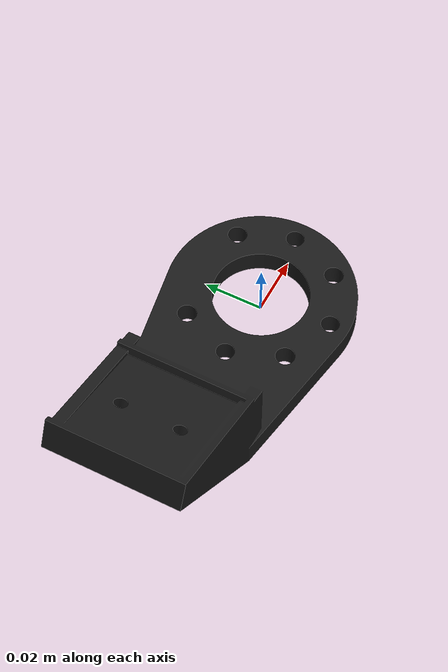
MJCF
<mujoco model="rizon_grav_d405_plate_mount">
  <compiler angle="radian" meshdir="assets" autolimits="true"/>

  <option cone="elliptic" impratio="10"/>

  <asset>
    <material name="black" rgba="0.1 0.1 0.1 1"/>

    <mesh name="rizon_grav_d405_plate_mount" file="rizon_grav_d405_plate_mount.stl" scale="0.001 0.001 0.001"/>
    <mesh name="rizon_grav_d405_plate_mount_collision" file="rizon_grav_d405_plate_mount_collision.stl" scale="0.001 0.001 0.001"/>
  </asset>

  <default>
    <default class="rizon_grav_d405_plate_mount">
      <default class="visual">
        <geom type="mesh" contype="0" conaffinity="0" group="2" material="black" density="1250"/>
      </default>
      <default class="collision">
        <geom type="mesh" group="3" density="0"/>
      </default>
    </default>
  </default>

  <worldbody>
    <body name="base" childclass="rizon_grav_d405_plate_mount">
      <geom mesh="rizon_grav_d405_plate_mount" class="visual"/>
      <geom mesh="rizon_grav_d405_plate_mount_collision" class="collision"/>
    </body>
  </worldbody>

</mujoco>
